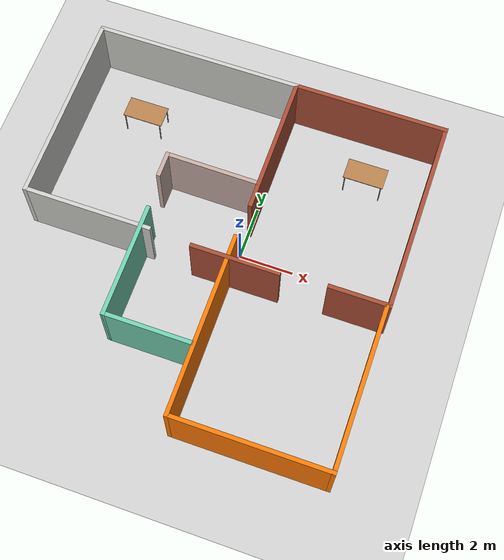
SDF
<sdf version="1.6">
 <world name="default">
  <light name="sun" type="directional">
   <pose>0 0 10 0 -0 0</pose>
   <diffuse>0.8 0.8 0.8 1</diffuse>
   <specular>0.2 0.2 0.2 1</specular>
   <attenuation>
    <range>1000</range>
    <constant>0.9</constant>
    <linear>0.01</linear>
    <quadratic>0.001</quadratic>
   </attenuation>
   <direction>-0.5 0.1 -0.9</direction>
   <spot><inner_angle>0</inner_angle><outer_angle>0</outer_angle><falloff>0</falloff></spot>
  </light>
  <model name="ground_plane">
   <static>1</static>
   <link name="link">
    <collision name="collision">
     <geometry><plane><normal>0 0 1</normal><size>100 100</size></plane></geometry>
     <surface>
      <contact><collide_bitmask>65535</collide_bitmask></contact>
      <friction><ode><mu>100</mu><mu2>50</mu2></ode></friction>
     </surface>
    </collision>
    <visual name="visual">
     <cast_shadows>0</cast_shadows>
     <geometry><plane><normal>0 0 1</normal><size>100 100</size></plane></geometry>
     <material>
      <script><uri>file://media/materials/scripts/gazebo.material</uri><name>Gazebo/Grey</name></script>
     </material>
    </visual>
   </link>
  </model>
  <gravity>0 0 -9.8</gravity>
  <magnetic_field>6e-06 2.3e-05 -4.2e-05</magnetic_field>
  <atmosphere type="adiabatic"/>
  <physics type="ode">
   <max_step_size>0.001</max_step_size>
   <real_time_factor>1</real_time_factor>
   <real_time_update_rate>1000</real_time_update_rate>
  </physics>
  <scene><ambient>0.4 0.4 0.4 1</ambient><background>0.7 0.7 0.7 1</background><shadows>1</shadows></scene>
  <spherical_coordinates>
   <surface_model>EARTH_WGS84</surface_model>
   <latitude_deg>0</latitude_deg>
   <longitude_deg>0</longitude_deg>
   <elevation>0</elevation>
   <heading_deg>0</heading_deg>
  </spherical_coordinates>
  <model name="world">
   <pose>-0.949194 -0.451041 0 0 -0 0</pose>
   <link name="Wall_0">
    <collision name="Wall_0_Collision">
     <geometry><box><size>7.75 0.15 2.5</size></box></geometry>
     <pose>0 0 1.25 0 -0 0</pose>
    </collision>
    <visual name="Wall_0_Visual">
     <pose>0 0 1.25 0 -0 0</pose>
     <geometry><box><size>7.75 0.15 2.5</size></box></geometry>
     <material>
      <script><uri>file://media/materials/scripts/gazebo.material</uri><name>Gazebo/CeilingTiled</name></script>
      <ambient>1 1 1 1</ambient>
     </material>
     <meta><layer>0</layer></meta>
    </visual>
    <pose>-2.8 6.51251 0 0 -0 0</pose>
   </link>
   <link name="Wall_1">
    <collision name="Wall_1_Collision">
     <geometry><box><size>5.25 0.15 2.5</size></box></geometry>
     <pose>0 0 1.25 0 -0 0</pose>
    </collision>
    <visual name="Wall_1_Visual">
     <pose>0 0 1.25 0 -0 0</pose>
     <geometry><box><size>5.25 0.15 2.5</size></box></geometry>
     <material>
      <script><uri>file://media/materials/scripts/gazebo.material</uri><name>Gazebo/Bricks</name></script>
      <ambient>1 1 1 1</ambient>
     </material>
     <meta><layer>0</layer></meta>
    </visual>
    <pose>1 3.96251 0 0 -0 -1.5708</pose>
   </link>
   <link name="Wall_10">
    <collision name="Wall_10_Collision">
     <geometry><box><size>7.25 0.15 2.5</size></box></geometry>
     <pose>0 0 1.25 0 -0 0</pose>
    </collision>
    <visual name="Wall_10_Visual">
     <pose>0 0 1.25 0 -0 0</pose>
     <geometry><box><size>7.25 0.15 2.5</size></box></geometry>
     <material>
      <script><uri>file://media/materials/scripts/gazebo.material</uri><name>Gazebo/CeilingTiled</name></script>
      <ambient>1 1 1 1</ambient>
     </material>
     <meta><layer>0</layer></meta>
    </visual>
    <pose>-6.6 2.96251 0 0 -0 -1.5708</pose>
   </link>
   <link name="Wall_11">
    <collision name="Wall_11_Collision">
     <geometry><box><size>4.75 0.15 2.5</size></box></geometry>
     <pose>0 0 1.25 0 -0 0</pose>
    </collision>
    <visual name="Wall_11_Visual">
     <pose>0 0 1.25 0 -0 0</pose>
     <geometry><box><size>4.75 0.15 2.5</size></box></geometry>
     <material>
      <script><uri>file://media/materials/scripts/gazebo.material</uri><name>Gazebo/CeilingTiled</name></script>
      <ambient>1 1 1 1</ambient>
     </material>
     <meta><layer>0</layer></meta>
    </visual>
    <pose>-4.3 -0.587486 0 0 -0 0</pose>
   </link>
   <link name="Wall_13">
    <collision name="Wall_13_Collision">
     <geometry><box><size>3.25 0.15 2.5</size></box></geometry>
     <pose>0 0 1.25 0 -0 0</pose>
    </collision>
    <visual name="Wall_13_Visual">
     <pose>0 0 1.25 0 -0 0</pose>
     <geometry><box><size>3.25 0.15 2.5</size></box></geometry>
     <material>
      <script><uri>file://media/materials/scripts/gazebo.material</uri><name>Gazebo/Bricks</name></script>
      <ambient>1 1 1 1</ambient>
     </material>
     <meta><layer>0</layer></meta>
    </visual>
    <pose>1.17546 -0.70786 0 0 -0 0</pose>
   </link>
   <link name="Wall_15">
    <collision name="Wall_15_Collision">
     <geometry><box><size>4.25 0.15 2.5</size></box></geometry>
     <pose>0 0 1.25 0 -0 0</pose>
    </collision>
    <visual name="Wall_15_Visual">
     <pose>0 0 1.25 0 -0 0</pose>
     <geometry><box><size>4.25 0.15 2.5</size></box></geometry>
     <material>
      <script><uri>file://media/materials/scripts/gazebo.material</uri><name>Gazebo/Grey</name></script>
      <ambient>0.435294 0.796078 0.67451 1</ambient>
     </material>
     <meta><layer>0</layer></meta>
    </visual>
    <pose>-2.30172 -1.93192 0 0 -0 -1.5708</pose>
   </link>
   <link name="Wall_16">
    <collision name="Wall_16_Collision">
     <geometry><box><size>3.25 0.15 2.5</size></box></geometry>
     <pose>0 0 1.25 0 -0 0</pose>
    </collision>
    <visual name="Wall_16_Visual">
     <pose>0 0 1.25 0 -0 0</pose>
     <geometry><box><size>3.25 0.15 2.5</size></box></geometry>
     <material>
      <script><uri>file://media/materials/scripts/gazebo.material</uri><name>Gazebo/Grey</name></script>
      <ambient>0.435294 0.796078 0.67451 1</ambient>
     </material>
     <meta><layer>0</layer></meta>
    </visual>
    <pose>-0.751723 -3.98192 0 0 -0 0</pose>
   </link>
   <link name="Wall_19">
    <collision name="Wall_19_Collision">
     <geometry><box><size>6.75 0.15 2.5</size></box></geometry>
     <pose>0 0 1.25 0 -0 0</pose>
    </collision>
    <visual name="Wall_19_Visual">
     <pose>0 0 1.25 0 -0 0</pose>
     <geometry><box><size>6.75 0.15 2.5</size></box></geometry>
     <material>
      <script><uri>file://media/materials/scripts/gazebo.material</uri><name>Gazebo/Grey</name></script>
      <ambient>0.996078 0.47451 0.0196078 1</ambient>
     </material>
     <meta><layer>0</layer></meta>
    </visual>
    <pose>0.910251 -3.21251 0 0 -0 -1.5708</pose>
   </link>
   <link name="Wall_20">
    <collision name="Wall_20_Collision">
     <geometry><box><size>5.75 0.15 2.5</size></box></geometry>
     <pose>0 0 1.25 0 -0 0</pose>
    </collision>
    <visual name="Wall_20_Visual">
     <pose>0 0 1.25 0 -0 0</pose>
     <geometry><box><size>5.75 0.15 2.5</size></box></geometry>
     <material>
      <script><uri>file://media/materials/scripts/gazebo.material</uri><name>Gazebo/Grey</name></script>
      <ambient>0.996078 0.47451 0.0196078 1</ambient>
     </material>
     <meta><layer>0</layer></meta>
    </visual>
    <pose>3.71025 -6.51251 0 0 -0 0</pose>
   </link>
   <link name="Wall_21">
    <collision name="Wall_21_Collision">
     <geometry><box><size>6 0.15 2.5</size></box></geometry>
     <pose>0 0 1.25 0 -0 0</pose>
    </collision>
    <visual name="Wall_21_Visual">
     <pose>0 0 1.25 0 -0 0</pose>
     <geometry><box><size>6 0.15 2.5</size></box></geometry>
     <material>
      <script><uri>file://media/materials/scripts/gazebo.material</uri><name>Gazebo/Grey</name></script>
      <ambient>0.996078 0.47451 0.0196078 1</ambient>
     </material>
     <meta><layer>0</layer></meta>
    </visual>
    <pose>6.51025 -3.58751 0 0 -0 1.5708</pose>
   </link>
   <link name="Wall_3">
    <collision name="Wall_3_Collision">
     <geometry><box><size>3.47012 0.15 2.5</size></box></geometry>
     <pose>0 0 1.25 0 -0 0</pose>
    </collision>
    <visual name="Wall_3_Visual">
     <pose>0 0 1.25 0 -0 0</pose>
     <geometry><box><size>3.47012 0.15 2.5</size></box></geometry>
     <material>
      <script><uri>file://media/materials/scripts/gazebo.material</uri><name>Gazebo/Grey</name></script>
      <ambient>0.760784 0.662745 0.627451 1</ambient>
     </material>
     <meta><layer>0</layer></meta>
    </visual>
    <pose>-0.757636 2.30315 0 0 -0 3.13287</pose>
   </link>
   <link name="Wall_4">
    <collision name="Wall_4_Collision">
     <geometry><box><size>1 0.15 2.5</size></box></geometry>
     <pose>0 0 1.25 0 -0 0</pose>
    </collision>
    <visual name="Wall_4_Visual">
     <pose>0 0 1.25 0 -0 0</pose>
     <geometry><box><size>1 0.15 2.5</size></box></geometry>
     <material>
      <script><uri>file://media/materials/scripts/gazebo.material</uri><name>Gazebo/Grey</name></script>
      <ambient>0.760784 0.662745 0.627451 1</ambient>
     </material>
     <meta><layer>0</layer></meta>
    </visual>
    <pose>-2.41763 1.89263 0 0 -0 -1.5708</pose>
   </link>
   <link name="Wall_6">
    <collision name="Wall_6_Collision">
     <geometry><box><size>5.75 0.15 2.5</size></box></geometry>
     <pose>0 0 1.25 0 -0 0</pose>
    </collision>
    <visual name="Wall_6_Visual">
     <pose>0 0 1.25 0 -0 0</pose>
     <geometry><box><size>5.75 0.15 2.5</size></box></geometry>
     <material>
      <script><uri>file://media/materials/scripts/gazebo.material</uri><name>Gazebo/Bricks</name></script>
      <ambient>1 1 1 1</ambient>
     </material>
     <meta><layer>0</layer></meta>
    </visual>
    <pose>3.8 6.51251 0 0 -0 0</pose>
   </link>
   <link name="Wall_7">
    <collision name="Wall_7_Collision">
     <geometry><box><size>7.25 0.15 2.5</size></box></geometry>
     <pose>0 0 1.25 0 -0 0</pose>
    </collision>
    <visual name="Wall_7_Visual">
     <pose>0 0 1.25 0 -0 0</pose>
     <geometry><box><size>7.25 0.15 2.5</size></box></geometry>
     <material>
      <script><uri>file://media/materials/scripts/gazebo.material</uri><name>Gazebo/Bricks</name></script>
      <ambient>1 1 1 1</ambient>
     </material>
     <meta><layer>0</layer></meta>
    </visual>
    <pose>6.6 2.96251 0 0 -0 -1.5708</pose>
   </link>
   <link name="Wall_8">
    <collision name="Wall_8_Collision">
     <geometry><box><size>2.25 0.15 2.5</size></box></geometry>
     <pose>0 0 1.25 0 -0 0</pose>
    </collision>
    <visual name="Wall_8_Visual">
     <pose>0 0 1.25 0 -0 0</pose>
     <geometry><box><size>2.25 0.15 2.5</size></box></geometry>
     <material>
      <script><uri>file://media/materials/scripts/gazebo.material</uri><name>Gazebo/Bricks</name></script>
      <ambient>1 1 1 1</ambient>
     </material>
     <meta><layer>0</layer></meta>
    </visual>
    <pose>5.55 -0.587486 0 0 -0 3.14159</pose>
   </link>
   <static>1</static>
  </model>
  <model name="table">
   <static>1</static>
   <link name="link">
    <collision name="surface">
     <pose>0 0 1 0 -0 0</pose>
     <geometry><box><size>1.5 0.8 0.03</size></box></geometry>
     <surface><friction><ode><mu>0.6</mu><mu2>0.6</mu2></ode></friction></surface>
    </collision>
    <visual name="visual1">
     <pose>0 0 1 0 -0 0</pose>
     <geometry><box><size>1.5 0.8 0.03</size></box></geometry>
     <material>
      <script><uri>file://media/materials/scripts/gazebo.material</uri><name>Gazebo/Wood</name></script>
     </material>
    </visual>
    <collision name="front_left_leg">
     <pose>0.68 0.38 0.5 0 -0 0</pose>
     <geometry><cylinder><radius>0.02</radius><length>1</length></cylinder></geometry>
    </collision>
    <visual name="front_left_leg">
     <pose>0.68 0.38 0.5 0 -0 0</pose>
     <geometry><cylinder><radius>0.02</radius><length>1</length></cylinder></geometry>
     <material>
      <script><uri>file://media/materials/scripts/gazebo.material</uri><name>Gazebo/Grey</name></script>
     </material>
    </visual>
    <collision name="front_right_leg">
     <pose>0.68 -0.38 0.5 0 -0 0</pose>
     <geometry><cylinder><radius>0.02</radius><length>1</length></cylinder></geometry>
    </collision>
    <visual name="front_right_leg">
     <pose>0.68 -0.38 0.5 0 -0 0</pose>
     <geometry><cylinder><radius>0.02</radius><length>1</length></cylinder></geometry>
     <material>
      <script><uri>file://media/materials/scripts/gazebo.material</uri><name>Gazebo/Grey</name></script>
     </material>
    </visual>
    <collision name="back_right_leg">
     <pose>-0.68 -0.38 0.5 0 -0 0</pose>
     <geometry><cylinder><radius>0.02</radius><length>1</length></cylinder></geometry>
    </collision>
    <visual name="back_right_leg">
     <pose>-0.68 -0.38 0.5 0 -0 0</pose>
     <geometry><cylinder><radius>0.02</radius><length>1</length></cylinder></geometry>
     <material>
      <script><uri>file://media/materials/scripts/gazebo.material</uri><name>Gazebo/Grey</name></script>
     </material>
    </visual>
    <collision name="back_left_leg">
     <pose>-0.68 0.38 0.5 0 -0 0</pose>
     <geometry><cylinder><radius>0.02</radius><length>1</length></cylinder></geometry>
    </collision>
    <visual name="back_left_leg">
     <pose>-0.68 0.38 0.5 0 -0 0</pose>
     <geometry><cylinder><radius>0.02</radius><length>1</length></cylinder></geometry>
     <material>
      <script><uri>file://media/materials/scripts/gazebo.material</uri><name>Gazebo/Grey</name></script>
     </material>
    </visual>
   </link>
   <pose>3.38244 4.23492 0 0 -0 0</pose>
  </model>
  <model name="table_0">
   <static>1</static>
   <link name="link">
    <collision name="surface">
     <pose>0 0 1 0 -0 0</pose>
     <geometry><box><size>1.5 0.8 0.03</size></box></geometry>
     <surface><friction><ode><mu>0.6</mu><mu2>0.6</mu2></ode></friction></surface>
    </collision>
    <visual name="visual1">
     <pose>0 0 1 0 -0 0</pose>
     <geometry><box><size>1.5 0.8 0.03</size></box></geometry>
     <material>
      <script><uri>file://media/materials/scripts/gazebo.material</uri><name>Gazebo/Wood</name></script>
     </material>
    </visual>
    <collision name="front_left_leg">
     <pose>0.68 0.38 0.5 0 -0 0</pose>
     <geometry><cylinder><radius>0.02</radius><length>1</length></cylinder></geometry>
    </collision>
    <visual name="front_left_leg">
     <pose>0.68 0.38 0.5 0 -0 0</pose>
     <geometry><cylinder><radius>0.02</radius><length>1</length></cylinder></geometry>
     <material>
      <script><uri>file://media/materials/scripts/gazebo.material</uri><name>Gazebo/Grey</name></script>
     </material>
    </visual>
    <collision name="front_right_leg">
     <pose>0.68 -0.38 0.5 0 -0 0</pose>
     <geometry><cylinder><radius>0.02</radius><length>1</length></cylinder></geometry>
    </collision>
    <visual name="front_right_leg">
     <pose>0.68 -0.38 0.5 0 -0 0</pose>
     <geometry><cylinder><radius>0.02</radius><length>1</length></cylinder></geometry>
     <material>
      <script><uri>file://media/materials/scripts/gazebo.material</uri><name>Gazebo/Grey</name></script>
     </material>
    </visual>
    <collision name="back_right_leg">
     <pose>-0.68 -0.38 0.5 0 -0 0</pose>
     <geometry><cylinder><radius>0.02</radius><length>1</length></cylinder></geometry>
    </collision>
    <visual name="back_right_leg">
     <pose>-0.68 -0.38 0.5 0 -0 0</pose>
     <geometry><cylinder><radius>0.02</radius><length>1</length></cylinder></geometry>
     <material>
      <script><uri>file://media/materials/scripts/gazebo.material</uri><name>Gazebo/Grey</name></script>
     </material>
    </visual>
    <collision name="back_left_leg">
     <pose>-0.68 0.38 0.5 0 -0 0</pose>
     <geometry><cylinder><radius>0.02</radius><length>1</length></cylinder></geometry>
    </collision>
    <visual name="back_left_leg">
     <pose>-0.68 0.38 0.5 0 -0 0</pose>
     <geometry><cylinder><radius>0.02</radius><length>1</length></cylinder></geometry>
     <material>
      <script><uri>file://media/materials/scripts/gazebo.material</uri><name>Gazebo/Grey</name></script>
     </material>
    </visual>
   </link>
   <pose>-5.13658 4.02236 0 0 -0 0</pose>
  </model>
 </world>
</sdf>
